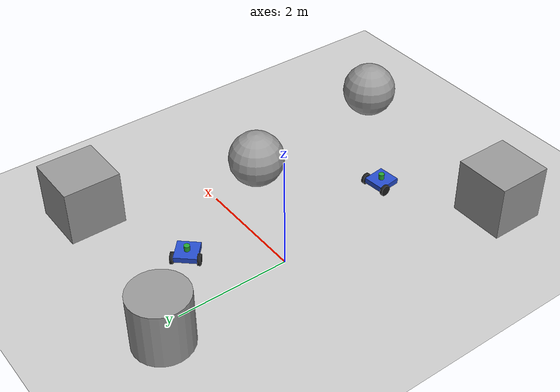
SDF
<sdf version="1.7">
 <world name="default">
  <model name="ground_plane">
   <static>1</static>
   <link name="link">
    <collision name="collision">
     <geometry><plane><normal>0 0 1</normal><size>100 100</size></plane></geometry>
     <surface>
      <contact><collide_bitmask>65535</collide_bitmask></contact>
      <friction><ode><mu>100</mu><mu2>50</mu2></ode></friction>
     </surface>
    </collision>
    <visual name="visual">
     <cast_shadows>0</cast_shadows>
     <geometry><plane><normal>0 0 1</normal><size>100 100</size></plane></geometry>
     <material>
      <script><uri>file://media/materials/scripts/gazebo.material</uri><name>Gazebo/Grey</name></script>
     </material>
    </visual>
   </link>
  </model>
  <light name="sun" type="directional">
   <pose>0 0 10 0 -0 0</pose>
   <diffuse>0.8 0.8 0.8 1</diffuse>
   <specular>0.2 0.2 0.2 1</specular>
   <attenuation>
    <range>1000</range>
    <constant>0.9</constant>
    <linear>0.01</linear>
    <quadratic>0.001</quadratic>
   </attenuation>
   <direction>-0.5 0.1 -0.9</direction>
   <spot><inner_angle>0</inner_angle><outer_angle>0</outer_angle><falloff>0</falloff></spot>
  </light>
  <scene><shadows>0</shadows><ambient>0.4 0.4 0.4 1</ambient><background>0.7 0.7 0.7 1</background></scene>
  <physics type="ode">
   <real_time_update_rate>1000</real_time_update_rate>
   <max_step_size>0.001</max_step_size>
   <real_time_factor>1</real_time_factor>
   <ode>
    <solver>
     <type>quick</type>
     <iters>150</iters>
     <precon_iters>0</precon_iters>
     <sor>1.4</sor>
     <use_dynamic_moi_rescaling>1</use_dynamic_moi_rescaling>
    </solver>
    <constraints>
     <cfm>1e-05</cfm>
     <erp>0.2</erp>
     <contact_max_correcting_vel>2000</contact_max_correcting_vel>
     <contact_surface_layer>0.01</contact_surface_layer>
    </constraints>
   </ode>
  </physics>
  <gravity>0 0 -9.8</gravity>
  <magnetic_field>6e-06 2.3e-05 -4.2e-05</magnetic_field>
  <atmosphere type="adiabatic"/>
  <audio><device>default</device></audio>
  <spherical_coordinates>
   <surface_model>EARTH_WGS84</surface_model>
   <latitude_deg>0</latitude_deg>
   <longitude_deg>0</longitude_deg>
   <elevation>0</elevation>
   <heading_deg>0</heading_deg>
  </spherical_coordinates>
  <model name="robot2">
   <link name="base_link">
    <inertial>
     <pose>0.016522 0 0.045652 0 -0 0</pose>
     <mass>11.5</mass>
     <inertia>
      <ixx>0.139183</ixx>
      <ixy>0.01</ixy>
      <ixz>0.0211739</ixz>
      <iyy>0.166543</iyy>
      <iyz>0.01</iyz>
      <izz>0.157361</izz>
     </inertia>
    </inertial>
    <collision name="base_link_collision">
     <pose>0 0 0.05 0 -0 0</pose>
     <geometry><box><size>0.4 0.4 0.1</size></box></geometry>
    </collision>
    <collision name="base_link_fixed_joint_lump__camera_link_collision_1">
     <pose>0.2 0 0.05 0 -0 0</pose>
     <geometry><box><size>0.025 0.025 0.025</size></box></geometry>
    </collision>
    <collision name="base_link_fixed_joint_lump__caster_wheel_collision_2">
     <pose>0.15 0 -0.03 0 -0 0</pose>
     <geometry><sphere><radius>0.03</radius></sphere></geometry>
    </collision>
    <collision name="base_link_fixed_joint_lump__lidar_link_collision_3">
     <pose>0 0 0.15 0 -0 0</pose>
     <geometry><cylinder><length>0.1</length><radius>0.05</radius></cylinder></geometry>
    </collision>
    <visual name="base_link_visual">
     <pose>0 0 0.05 0 -0 0</pose>
     <geometry><box><size>0.4 0.4 0.1</size></box></geometry>
     <material>
      <script><name>Gazebo/Blue</name><uri>file://media/materials/scripts/gazebo.material</uri></script>
     </material>
    </visual>
    <visual name="base_link_fixed_joint_lump__camera_link_visual_1">
     <pose>0.2 0 0.05 0 -0 0</pose>
     <geometry><box><size>0.025 0.025 0.025</size></box></geometry>
     <material>
      <script><name>Gazebo/Red</name><uri>file://media/materials/scripts/gazebo.material</uri></script>
     </material>
    </visual>
    <visual name="base_link_fixed_joint_lump__caster_wheel_visual_2">
     <pose>0.15 0 -0.03 0 -0 0</pose>
     <geometry><sphere><radius>0.03</radius></sphere></geometry>
     <material>
      <script><name>Gazebo/Black</name><uri>file://media/materials/scripts/gazebo.material</uri></script>
     </material>
    </visual>
    <visual name="base_link_fixed_joint_lump__lidar_link_visual_3">
     <pose>0 0 0.15 0 -0 0</pose>
     <geometry><cylinder><length>0.1</length><radius>0.05</radius></cylinder></geometry>
     <material>
      <script><name>Gazebo/Green</name><uri>file://media/materials/scripts/gazebo.material</uri></script>
     </material>
    </visual>
    <sensor name="camera" type="camera">
     <visualize>1</visualize>
     <update_rate>30</update_rate>
     <camera>
      <horizontal_fov>1.57</horizontal_fov>
      <image><width>640</width><height>480</height></image>
      <clip><near>0.1</near><far>100</far></clip>
     </camera>
     <plugin name="camera_plugin" filename="libgazebo_ros_camera.so">
      <ros><namespace>robot2</namespace></ros>
      <frame_name>camera_link</frame_name>
     </plugin>
     <pose>0.2 0 0.05 0 -0 0</pose>
    </sensor>
    <sensor name="lidar" type="ray">
     <visualize>1</visualize>
     <update_rate>20</update_rate>
     <ray>
      <scan>
       <horizontal>
        <samples>360</samples>
        <resolution>1</resolution>
        <min_angle>-3.14159</min_angle>
        <max_angle>3.14159</max_angle>
       </horizontal>
       <vertical><samples>1</samples><min_angle>0</min_angle><max_angle>0</max_angle></vertical>
      </scan>
      <range><min>0.1</min><max>2</max><resolution>0.01</resolution></range>
     </ray>
     <plugin name="lidar_plugin" filename="libgazebo_ros_ray_sensor.so">
      <ros><namespace>robot2</namespace><remapping>~/out:=scan</remapping></ros>
      <frame_name>lidar_link</frame_name>
      <output_type>sensor_msgs/LaserScan</output_type>
      <topic_name>scan</topic_name>
     </plugin>
     <pose>0 0 0.15 0 -0 0</pose>
    </sensor>
   </link>
   <joint name="left_wheel_joint" type="revolute">
    <pose relative_to="base_link">-0.15 0.225 0.05 0 -0 0</pose>
    <parent>base_link</parent>
    <child>left_wheel</child>
    <axis>
     <xyz>0 1 0</xyz>
     <limit><lower>-1e+16</lower><upper>1e+16</upper></limit>
     <dynamics><spring_reference>0</spring_reference><spring_stiffness>0</spring_stiffness></dynamics>
    </axis>
   </joint>
   <link name="left_wheel">
    <pose relative_to="left_wheel_joint">0 0 0 0 -0 0</pose>
    <inertial>
     <mass>1</mass>
     <inertia><ixx>0.01</ixx><ixy>0</ixy><ixz>0</ixz><iyy>0.01</iyy><iyz>0</iyz><izz>0.01</izz></inertia>
    </inertial>
    <collision name="left_wheel_collision">
     <pose>0 0 0 1.5708 -0 0</pose>
     <geometry><cylinder><length>0.05</length><radius>0.1</radius></cylinder></geometry>
    </collision>
    <visual name="left_wheel_visual">
     <pose>0 0 0 1.5708 -0 0</pose>
     <geometry><cylinder><length>0.05</length><radius>0.1</radius></cylinder></geometry>
     <material>
      <script><name>Gazebo/Black</name><uri>file://media/materials/scripts/gazebo.material</uri></script>
     </material>
    </visual>
   </link>
   <joint name="right_wheel_joint" type="revolute">
    <pose relative_to="base_link">-0.15 -0.225 0.05 0 -0 0</pose>
    <parent>base_link</parent>
    <child>right_wheel</child>
    <axis>
     <xyz>0 1 0</xyz>
     <limit><lower>-1e+16</lower><upper>1e+16</upper></limit>
     <dynamics><spring_reference>0</spring_reference><spring_stiffness>0</spring_stiffness></dynamics>
    </axis>
   </joint>
   <link name="right_wheel">
    <pose relative_to="right_wheel_joint">0 0 0 0 -0 0</pose>
    <inertial>
     <mass>1</mass>
     <inertia><ixx>0.01</ixx><ixy>0</ixy><ixz>0</ixz><iyy>0.01</iyy><iyz>0</iyz><izz>0.01</izz></inertia>
    </inertial>
    <collision name="right_wheel_collision">
     <pose>0 0 0 1.5708 -0 0</pose>
     <geometry><cylinder><length>0.05</length><radius>0.1</radius></cylinder></geometry>
    </collision>
    <visual name="right_wheel_visual">
     <pose>0 0 0 1.5708 -0 0</pose>
     <geometry><cylinder><length>0.05</length><radius>0.1</radius></cylinder></geometry>
     <material>
      <script><name>Gazebo/Black</name><uri>file://media/materials/scripts/gazebo.material</uri></script>
     </material>
    </visual>
   </link>
   <static>0</static>
   <plugin name="diff_drive" filename="libgazebo_ros_diff_drive.so">
    <ros><namespace>robot2</namespace></ros>
    <left_joint>left_wheel_joint</left_joint>
    <right_joint>right_wheel_joint</right_joint>
    <wheel_separation>0.45</wheel_separation>
    <wheel_diameter>0.2</wheel_diameter>
    <max_wheel_torque>200</max_wheel_torque>
    <max_wheel_acceleration>10.0</max_wheel_acceleration>
    <commandTopic>cmd_vel</commandTopic>
    <odometry_frame>robot2/odom</odometry_frame>
    <robot_base_frame>robot2/base_link</robot_base_frame>
    <publish_odom>1</publish_odom>
    <publish_odom_tf>1</publish_odom_tf>
    <publish_wheel_tf>0</publish_wheel_tf>
   </plugin>
   <pose>0.567928 -2.54764 0.055003 -0 -0.033211 -1.47538</pose>
  </model>
  <model name="robot1">
   <link name="base_link">
    <inertial>
     <pose>0.016522 0 0.045652 0 -0 0</pose>
     <mass>11.5</mass>
     <inertia>
      <ixx>0.139183</ixx>
      <ixy>0.01</ixy>
      <ixz>0.0211739</ixz>
      <iyy>0.166543</iyy>
      <iyz>0.01</iyz>
      <izz>0.157361</izz>
     </inertia>
    </inertial>
    <collision name="base_link_collision">
     <pose>0 0 0.05 0 -0 0</pose>
     <geometry><box><size>0.4 0.4 0.1</size></box></geometry>
    </collision>
    <collision name="base_link_fixed_joint_lump__camera_link_collision_1">
     <pose>0.2 0 0.05 0 -0 0</pose>
     <geometry><box><size>0.025 0.025 0.025</size></box></geometry>
    </collision>
    <collision name="base_link_fixed_joint_lump__caster_wheel_collision_2">
     <pose>0.15 0 -0.03 0 -0 0</pose>
     <geometry><sphere><radius>0.03</radius></sphere></geometry>
    </collision>
    <collision name="base_link_fixed_joint_lump__lidar_link_collision_3">
     <pose>0 0 0.15 0 -0 0</pose>
     <geometry><cylinder><length>0.1</length><radius>0.05</radius></cylinder></geometry>
    </collision>
    <visual name="base_link_visual">
     <pose>0 0 0.05 0 -0 0</pose>
     <geometry><box><size>0.4 0.4 0.1</size></box></geometry>
     <material>
      <script><name>Gazebo/Blue</name><uri>file://media/materials/scripts/gazebo.material</uri></script>
     </material>
    </visual>
    <visual name="base_link_fixed_joint_lump__camera_link_visual_1">
     <pose>0.2 0 0.05 0 -0 0</pose>
     <geometry><box><size>0.025 0.025 0.025</size></box></geometry>
     <material>
      <script><name>Gazebo/Red</name><uri>file://media/materials/scripts/gazebo.material</uri></script>
     </material>
    </visual>
    <visual name="base_link_fixed_joint_lump__caster_wheel_visual_2">
     <pose>0.15 0 -0.03 0 -0 0</pose>
     <geometry><sphere><radius>0.03</radius></sphere></geometry>
     <material>
      <script><name>Gazebo/Black</name><uri>file://media/materials/scripts/gazebo.material</uri></script>
     </material>
    </visual>
    <visual name="base_link_fixed_joint_lump__lidar_link_visual_3">
     <pose>0 0 0.15 0 -0 0</pose>
     <geometry><cylinder><length>0.1</length><radius>0.05</radius></cylinder></geometry>
     <material>
      <script><name>Gazebo/Green</name><uri>file://media/materials/scripts/gazebo.material</uri></script>
     </material>
    </visual>
    <sensor name="camera" type="camera">
     <visualize>1</visualize>
     <update_rate>30</update_rate>
     <camera>
      <horizontal_fov>1.57</horizontal_fov>
      <image><width>640</width><height>480</height></image>
      <clip><near>0.1</near><far>100</far></clip>
     </camera>
     <plugin name="camera_plugin" filename="libgazebo_ros_camera.so">
      <ros><namespace>robot1</namespace></ros>
      <frame_name>camera_link</frame_name>
     </plugin>
     <pose>0.2 0 0.05 0 -0 0</pose>
    </sensor>
    <sensor name="lidar" type="ray">
     <visualize>1</visualize>
     <update_rate>20</update_rate>
     <ray>
      <scan>
       <horizontal>
        <samples>360</samples>
        <resolution>1</resolution>
        <min_angle>-3.14159</min_angle>
        <max_angle>3.14159</max_angle>
       </horizontal>
       <vertical><samples>1</samples><min_angle>0</min_angle><max_angle>0</max_angle></vertical>
      </scan>
      <range><min>0.1</min><max>2</max><resolution>0.01</resolution></range>
     </ray>
     <plugin name="lidar_plugin" filename="libgazebo_ros_ray_sensor.so">
      <ros><namespace>robot1</namespace><remapping>~/out:=scan</remapping></ros>
      <frame_name>lidar_link</frame_name>
      <output_type>sensor_msgs/LaserScan</output_type>
      <topic_name>scan</topic_name>
     </plugin>
     <pose>0 0 0.15 0 -0 0</pose>
    </sensor>
   </link>
   <joint name="left_wheel_joint" type="revolute">
    <pose relative_to="base_link">-0.15 0.225 0.05 0 -0 0</pose>
    <parent>base_link</parent>
    <child>left_wheel</child>
    <axis>
     <xyz>0 1 0</xyz>
     <limit><lower>-1e+16</lower><upper>1e+16</upper></limit>
     <dynamics><spring_reference>0</spring_reference><spring_stiffness>0</spring_stiffness></dynamics>
    </axis>
   </joint>
   <link name="left_wheel">
    <pose relative_to="left_wheel_joint">0 0 0 0 -0 0</pose>
    <inertial>
     <mass>1</mass>
     <inertia><ixx>0.01</ixx><ixy>0</ixy><ixz>0</ixz><iyy>0.01</iyy><iyz>0</iyz><izz>0.01</izz></inertia>
    </inertial>
    <collision name="left_wheel_collision">
     <pose>0 0 0 1.5708 -0 0</pose>
     <geometry><cylinder><length>0.05</length><radius>0.1</radius></cylinder></geometry>
    </collision>
    <visual name="left_wheel_visual">
     <pose>0 0 0 1.5708 -0 0</pose>
     <geometry><cylinder><length>0.05</length><radius>0.1</radius></cylinder></geometry>
     <material>
      <script><name>Gazebo/Black</name><uri>file://media/materials/scripts/gazebo.material</uri></script>
     </material>
    </visual>
   </link>
   <joint name="right_wheel_joint" type="revolute">
    <pose relative_to="base_link">-0.15 -0.225 0.05 0 -0 0</pose>
    <parent>base_link</parent>
    <child>right_wheel</child>
    <axis>
     <xyz>0 1 0</xyz>
     <limit><lower>-1e+16</lower><upper>1e+16</upper></limit>
     <dynamics><spring_reference>0</spring_reference><spring_stiffness>0</spring_stiffness></dynamics>
    </axis>
   </joint>
   <link name="right_wheel">
    <pose relative_to="right_wheel_joint">0 0 0 0 -0 0</pose>
    <inertial>
     <mass>1</mass>
     <inertia><ixx>0.01</ixx><ixy>0</ixy><ixz>0</ixz><iyy>0.01</iyy><iyz>0</iyz><izz>0.01</izz></inertia>
    </inertial>
    <collision name="right_wheel_collision">
     <pose>0 0 0 1.5708 -0 0</pose>
     <geometry><cylinder><length>0.05</length><radius>0.1</radius></cylinder></geometry>
    </collision>
    <visual name="right_wheel_visual">
     <pose>0 0 0 1.5708 -0 0</pose>
     <geometry><cylinder><length>0.05</length><radius>0.1</radius></cylinder></geometry>
     <material>
      <script><name>Gazebo/Black</name><uri>file://media/materials/scripts/gazebo.material</uri></script>
     </material>
    </visual>
   </link>
   <static>0</static>
   <plugin name="diff_drive" filename="libgazebo_ros_diff_drive.so">
    <ros><namespace>robot1</namespace></ros>
    <left_joint>left_wheel_joint</left_joint>
    <right_joint>right_wheel_joint</right_joint>
    <wheel_separation>0.45</wheel_separation>
    <wheel_diameter>0.2</wheel_diameter>
    <max_wheel_torque>200</max_wheel_torque>
    <max_wheel_acceleration>10.0</max_wheel_acceleration>
    <commandTopic>cmd_vel</commandTopic>
    <odometry_frame>robot1/odom</odometry_frame>
    <robot_base_frame>robot1/base_link</robot_base_frame>
    <publish_odom>1</publish_odom>
    <publish_odom_tf>1</publish_odom_tf>
    <publish_wheel_tf>0</publish_wheel_tf>
   </plugin>
   <pose>1.04047 1.18593 0.055003 0 -0.033211 -0.740694</pose>
  </model>
  <model name="unit_box">
   <pose>2.93963 2.03778 0.5 0 -0 0</pose>
   <link name="link">
    <inertial>
     <mass>1</mass>
     <inertia>
      <ixx>0.166667</ixx>
      <ixy>0</ixy>
      <ixz>0</ixz>
      <iyy>0.166667</iyy>
      <iyz>0</iyz>
      <izz>0.166667</izz>
     </inertia>
    </inertial>
    <collision name="collision"><geometry><box><size>1 1 1</size></box></geometry></collision>
    <visual name="visual">
     <geometry><box><size>1 1 1</size></box></geometry>
     <material>
      <script><name>Gazebo/Grey</name><uri>file://media/materials/scripts/gazebo.material</uri></script>
     </material>
    </visual>
   </link>
  </model>
  <model name="unit_sphere">
   <pose>2.48808 -3.87455 0.5 0 -0 0</pose>
   <link name="link">
    <inertial>
     <mass>1</mass>
     <inertia><ixx>0.1</ixx><ixy>0</ixy><ixz>0</ixz><iyy>0.1</iyy><iyz>0</iyz><izz>0.1</izz></inertia>
    </inertial>
    <collision name="collision"><geometry><sphere><radius>0.5</radius></sphere></geometry></collision>
    <visual name="visual">
     <geometry><sphere><radius>0.5</radius></sphere></geometry>
     <material>
      <script><name>Gazebo/Grey</name><uri>file://media/materials/scripts/gazebo.material</uri></script>
     </material>
    </visual>
   </link>
  </model>
  <model name="unit_cylinder">
   <pose>-0.299969 2.44866 0.499997 -4e-06 -4e-06 -0</pose>
   <link name="link">
    <inertial>
     <mass>1</mass>
     <inertia><ixx>0.145833</ixx><ixy>0</ixy><ixz>0</ixz><iyy>0.145833</iyy><iyz>0</iyz><izz>0.125</izz></inertia>
    </inertial>
    <collision name="collision">
     <geometry><cylinder><radius>0.5</radius><length>1</length></cylinder></geometry>
    </collision>
    <visual name="visual">
     <geometry><cylinder><radius>0.5</radius><length>1</length></cylinder></geometry>
     <material>
      <script><name>Gazebo/Grey</name><uri>file://media/materials/scripts/gazebo.material</uri></script>
     </material>
    </visual>
   </link>
  </model>
  <model name="unit_box_0">
   <pose>-1.15574 -3.64579 0.5 0 -0 0</pose>
   <link name="link">
    <inertial>
     <mass>1</mass>
     <inertia>
      <ixx>0.166667</ixx>
      <ixy>0</ixy>
      <ixz>0</ixz>
      <iyy>0.166667</iyy>
      <iyz>0</iyz>
      <izz>0.166667</izz>
     </inertia>
    </inertial>
    <collision name="collision"><geometry><box><size>1 1 1</size></box></geometry></collision>
    <visual name="visual">
     <geometry><box><size>1 1 1</size></box></geometry>
     <material>
      <script><name>Gazebo/Grey</name><uri>file://media/materials/scripts/gazebo.material</uri></script>
     </material>
    </visual>
   </link>
  </model>
  <model name="unit_sphere_0">
   <pose>1.9884 -0.865371 0.5 0 -0 0</pose>
   <link name="link">
    <inertial>
     <mass>1</mass>
     <inertia><ixx>0.1</ixx><ixy>0</ixy><ixz>0</ixz><iyy>0.1</iyy><iyz>0</iyz><izz>0.1</izz></inertia>
    </inertial>
    <collision name="collision"><geometry><sphere><radius>0.5</radius></sphere></geometry></collision>
    <visual name="visual">
     <geometry><sphere><radius>0.5</radius></sphere></geometry>
     <material>
      <script><name>Gazebo/Grey</name><uri>file://media/materials/scripts/gazebo.material</uri></script>
     </material>
    </visual>
   </link>
  </model>
 </world>
</sdf>
